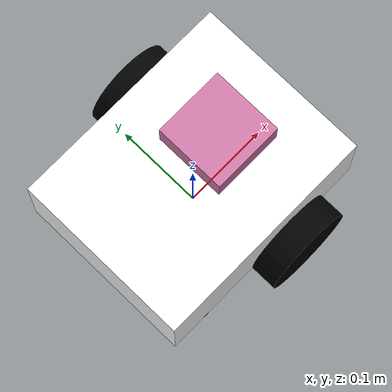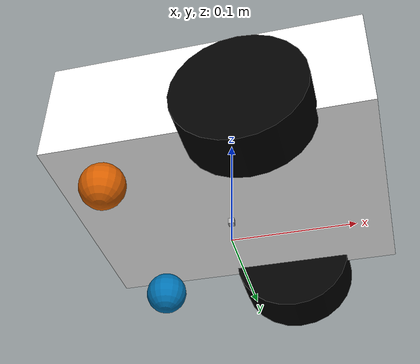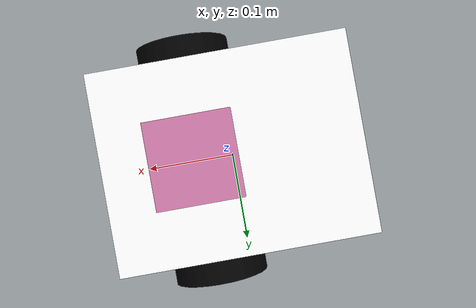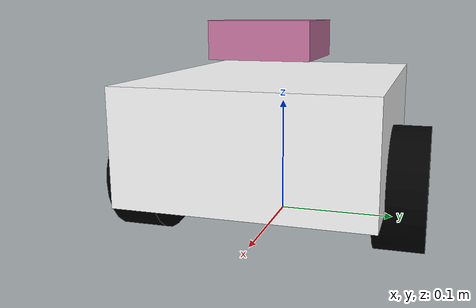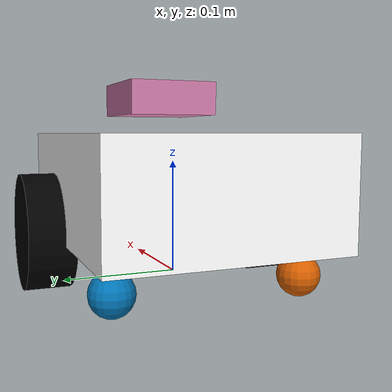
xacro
<?xml version="1.0"?>

<robot xmlns:xacro="http://www.ros.org/wiki/xacro" name="alphabot">
    <!-- Start GZ or Ignition depending on ROS 2 Version -->
    <xacro:arg name="is_ignition" default="true"/>

    <!-- Load Simulated or Real Hardware Interfaces -->
    <xacro:arg name="is_sim" default="true"/>
    <xacro:arg name="serial_device" default="/dev/ttyACM0"/>

    <xacro:include filename="$(find alphabot_description)/urdf/alphabot/alphabot_gazebo.xacro"/>
    <xacro:include filename="$(find alphabot_description)/urdf/alphabot/alphabot_ros2_control.xacro"/>

    <xacro:property name="wheel_radius" value="0.051" />
    <xacro:property name="wheel_width" value="0.040" />
    <xacro:property name="robot_height" value="0.093" />
    <xacro:property name="robot_width" value="0.20" />
    <xacro:property name="wheel_depth" value="0.22" />
    <xacro:property name="caster_wheel" value="0.018" />

    <material name="white">
        <color rgba="1 1 1 1"/>
    </material>
    <material name="black">
        <color rgba="0 0 0 1"/>
    </material>
    <material name="silver">
        <color rgba="0.79 0.82 0.93 1"/>
    </material>
    <material name="dark_grey">
        <color rgba="0.3 0.3 0.3 1"/>
    </material>

    <link name="base_footprint"/>

    <link name="base_link">
        <inertial>
            <mass value="2.0"/>
            <inertia ixx="0.1" ixy="0.0" ixz="0.0" iyy="0.1" iyz="0.0" izz="0.1"/>
        </inertial>
        <visual>
            <origin xyz="0.0 0.0 0.06" rpy="0.0 0.0 0.0"/>
            <geometry>
                <box size="0.256 ${robot_width} ${robot_height}"/>
            </geometry>
            <material name="white"/>
        </visual>
        <collision>
            <origin xyz="0.0 0.0 0.06" rpy="0.0 0.0 0.0"/>
            <geometry>
                <box size="0.256 ${robot_width} ${robot_height}"/>
            </geometry>
        </collision>
    </link>

    <link name="wheel_left_link">
        <inertial>
            <mass value="0.2"/>
            <inertia ixx="0.1" ixy="0.0" ixz="0.0" iyy="0.1" iyz="0.0" izz="0.2"/>
        </inertial>
        <visual>
            <origin xyz="0.0 0.0 0.0" rpy="1.5708 0.0 0.0"/>
            <geometry>
                <cylinder radius="${wheel_radius}" length="${wheel_width}"/>
            </geometry>
            <material name="black"/>
        </visual>
        <collision>
            <origin xyz="0.0 0.0 0.0" rpy="1.5708 0.0 0.0"/>
            <geometry>
                <cylinder radius="${wheel_radius}" length="${wheel_width}"/>
            </geometry>
        </collision>
    </link>

    <link name="wheel_right_link">
        <inertial>
            <mass value="0.2"/>
            <inertia ixx="0.01" ixy="0.0" ixz="0.0" iyy="0.01" iyz="0.0" izz="0.02"/>
        </inertial>
        <visual>
            <origin xyz="0.0 0.0 0.0" rpy="1.5708 0.0 0.0"/>
            <geometry>
                <cylinder radius="${wheel_radius}" length="${wheel_width}"/>
            </geometry>
            <material name="black"/>
        </visual>
        <collision>
            <origin xyz="0.0 0.0 0.0" rpy="1.5708 0.0 0.0"/>
            <geometry>
                <cylinder radius="${wheel_radius}" length="${wheel_width}"/>
            </geometry>
        </collision>
    </link>

    <link name="caster_front_link">
        <inertial>
            <mass value="0.05"/>
            <inertia ixx="0.01" ixy="0.0" ixz="0.0" iyy="0.01" iyz="0.0" izz="0.01"/>
        </inertial>
        <visual>
            <origin xyz="0.0 0.0 0.0" rpy="0.0 0.0 0.0"/>
            <geometry>
                <sphere radius="${caster_wheel}"/>
            </geometry>
        </visual>
        <collision>
            <origin xyz="0.0 0.0 0.0" rpy="0.0 0.0 0.0"/>
            <geometry>
                <sphere radius="${caster_wheel}"/>
            </geometry>
        </collision>
    </link>

    <link name="caster_rear_link">
        <inertial>
            <mass value="0.05"/>
            <inertia ixx="0.01" ixy="0.0" ixz="0.0" iyy="0.01" iyz="0.0" izz="0.01"/>
        </inertial>
        <visual>
            <origin xyz="0.0 0.0 0.0" rpy="0.0 0.0 0.0"/>
            <geometry>
                <sphere radius="${caster_wheel}"/>
            </geometry>
        </visual>
        <collision>
            <origin xyz="0.0 0.0 0.0" rpy="0.0 0.0 0.0"/>
            <geometry>
                <sphere radius="${caster_wheel}"/>
            </geometry>
        </collision>
    </link>

    <!-- Define the joints -->
    <joint name="base_joint" type="fixed">
        <parent link="base_footprint"/>
        <child link="base_link"/>
        <origin xyz="0.0 0.0 ${caster_wheel}" rpy="0.0 0.0 0.0"/>
    </joint>

    <joint name="wheel_right_joint" type="continuous">
        <parent link="base_link"/>
        <child link="wheel_right_link"/>
        <axis xyz="0.0 1.0 0.0"/>
        <origin xyz="0.035 -${wheel_depth/2} 0.02" rpy="0.0 0.0 0.0"/>
    </joint>

    <joint name="wheel_left_joint" type="continuous">
        <parent link="base_link"/>
        <child link="wheel_left_link"/>
        <axis xyz="0.0 1.0 0.0"/>
        <origin xyz="0.035 ${wheel_depth/2} 0.02" rpy="0.0 0.0 0.0"/>
    </joint>

    <joint name="caster_front_joint" type="fixed">
        <parent link="base_link"/>
        <child link="caster_front_link"/>
        <axis xyz="0.0 1.0 0.0"/>
        <origin xyz="-0.08 0.08 -0.01" rpy="0.0 0.0 0.0"/>
    </joint>

    <joint name="caster_rear_joint" type="fixed">
        <parent link="base_link"/>
        <child link="caster_rear_link"/>
        <axis xyz="0.0 1.0 0.0"/>
        <origin xyz="-0.08 -0.08 -0.01" rpy="0.0 0.0 0.0"/>
    </joint>

    <link name="laser_link">
    <inertial>
      <origin xyz="-0.011945780406062 -0.000381929217680526 -0.0170649378129477" rpy="0 0 0" />
      <mass value="0.073084435549317" />
      <inertia ixx="1.96074931730795E-05" ixy="-3.62091076640009E-07" ixz="4.28230084046735E-07"
               iyy="2.40983835136327E-05" iyz="1.50180909250652E-08"
               izz="4.14184164228595E-05" />
    </inertial>
    <visual>
      <origin xyz="0 0 0" rpy="0 0 0" />
      <geometry>
        <box size="0.08 0.08 0.03" />
      </geometry>
    </visual>
    <collision>
      <origin xyz="0 0 0" rpy="0 0 0" />
      <geometry>
        <box size="0.08 0.08 0.03" />
      </geometry>
    </collision>
  </link>

  <link name="imu_link">
        <collision>
            <origin xyz="0 0 0" rpy="0 0 0"/>
            <geometry>
                <box size="0.005 0.005 0.005"/>
            </geometry>
        </collision>
        <visual>
            <origin xyz="0 0 0" rpy="0 0 0"/>
            <geometry>
                <box size="0.005 0.005 0.005"/>
            </geometry>
        </visual>
        <inertial>
            <mass value="0.001" />
            <origin xyz="0 0 0" rpy="0 0 0"/>
            <inertia ixx="0.00000015" ixy="0" ixz="0" iyy="0.00000015" iyz="0" izz="0.00000015" />
        </inertial>
    </link>

  <joint name="laser_joint" type="fixed">
    <origin xyz="0.035 0.0 ${robot_height + 0.045}" rpy="0 0 0" />
    <parent link="base_link" />
    <child link="laser_link" />
    <axis xyz="0 0 0" />
  </joint>

  <joint name="imu_joint" type="fixed">
    <origin xyz="-0.0 0.0 0.0" rpy="0 0 0" />
    <parent link="base_link" />
    <child link="imu_link" />
    <axis xyz="0 0 0" />
  </joint>

</robot>
